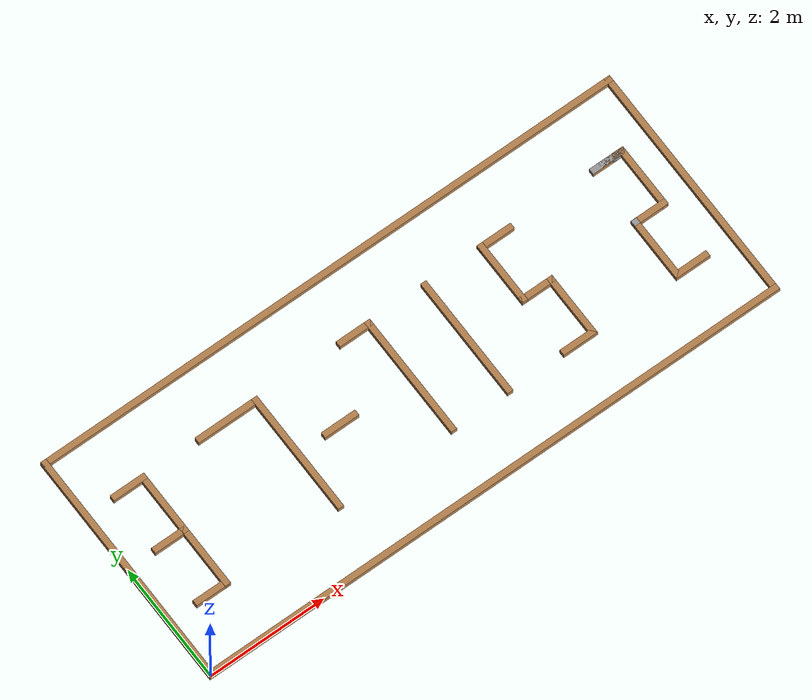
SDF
<?xml version='1.0'?>
<sdf version='1.6'>
  <model name='MapModel'>
    <pose frame=''>-236.645 -59.2901 0 0 -0 0</pose>
    <link name='Wall_0'>
      <collision name='Wall_0_Collision'>
        <geometry>
          <box>
            <size>45.75 0.15 2.5</size>
          </box>
        </geometry>
        <pose frame=''>0 0 1.25 0 -0 0</pose>
      </collision>
      <visual name='Wall_0_Visual'>
        <pose frame=''>0 0 1.25 0 -0 0</pose>
        <geometry>
          <box>
            <size>45.75 0.15 2.5</size>
          </box>
        </geometry>
        <material>
          <script>
            <uri>file://media/materials/scripts/gazebo.material</uri>
            <name>Gazebo/Grey</name>
          </script>
          <ambient>1 1 1 1</ambient>
        </material>
      </visual>
      <pose frame=''>-128.747 -57.3472 0 0 0 -2.87979</pose>
    </link>
    <link name='Wall_1'>
      <collision name='Wall_1_Collision'>
        <geometry>
          <box>
            <size>96 0.15 2.5</size>
          </box>
        </geometry>
        <pose frame=''>0 0 1.25 0 -0 0</pose>
      </collision>
      <visual name='Wall_1_Visual'>
        <pose frame=''>0 0 1.25 0 -0 0</pose>
        <geometry>
          <box>
            <size>96 0.15 2.5</size>
          </box>
        </geometry>
        <material>
          <script>
            <uri>file://media/materials/scripts/gazebo.material</uri>
            <name>Gazebo/Grey</name>
          </script>
          <ambient>1 1 1 1</ambient>
        </material>
      </visual>
      <pose frame=''>-198.695 -63.2483 0 0 -0 3.14159</pose>
    </link>
    <link name='Wall_18'>
      <collision name='Wall_18_Collision'>
        <geometry>
          <box>
            <size>1.1 0.1 0.1</size>
          </box>
        </geometry>
        <pose frame=''>0 0 0.05 0 -0 0</pose>
      </collision>
      <visual name='Wall_18_Visual'>
        <pose frame=''>0 0 0.05 0 -0 0</pose>
        <geometry>
          <box>
            <size>1.1 0.1 0.1</size>
          </box>
        </geometry>
        <material>
          <script>
            <uri>file://media/materials/scripts/gazebo.material</uri>
            <name>Gazebo/Wood</name>
          </script>
          <ambient>1 1 1 1</ambient>
        </material>
      </visual>
      <pose frame=''>239.145 62.2901 0 0 -0 0</pose>
    </link>
    <link name='Wall_19'>
      <collision name='Wall_19_Collision'>
        <geometry>
          <box>
            <size>2.1 0.1 0.1</size>
          </box>
        </geometry>
        <pose frame=''>0 0 0.05 0 -0 0</pose>
      </collision>
      <visual name='Wall_19_Visual'>
        <pose frame=''>0 0 0.05 0 -0 0</pose>
        <geometry>
          <box>
            <size>2.1 0.1 0.1</size>
          </box>
        </geometry>
        <material>
          <script>
            <uri>file://media/materials/scripts/gazebo.material</uri>
            <name>Gazebo/Wood</name>
          </script>
          <ambient>1 1 1 1</ambient>
        </material>
      </visual>
      <pose frame=''>239.645 61.2901 0 0 0 -1.5708</pose>
    </link>
    <link name='Wall_21'>
      <collision name='Wall_21_Collision'>
        <geometry>
          <box>
            <size>0.6 0.1 0.1</size>
          </box>
        </geometry>
        <pose frame=''>0 0 0.05 0 -0 0</pose>
      </collision>
      <visual name='Wall_21_Visual'>
        <pose frame=''>0 0 0.05 0 -0 0</pose>
        <geometry>
          <box>
            <size>0.6 0.1 0.1</size>
          </box>
        </geometry>
        <material>
          <script>
            <uri>file://media/materials/scripts/gazebo.material</uri>
            <name>Gazebo/Wood</name>
          </script>
          <ambient>1 1 1 1</ambient>
        </material>
      </visual>
      <pose frame=''>240.395 61.2851 0 0 -0 0</pose>
    </link>
    <link name='Wall_23'>
      <collision name='Wall_23_Collision'>
        <geometry>
          <box>
            <size>0.6 0.1 0.1</size>
          </box>
        </geometry>
        <pose frame=''>0 0 0.05 0 -0 0</pose>
      </collision>
      <visual name='Wall_23_Visual'>
        <pose frame=''>0 0 0.05 0 -0 0</pose>
        <geometry>
          <box>
            <size>0.6 0.1 0.1</size>
          </box>
        </geometry>
        <material>
          <script>
            <uri>file://media/materials/scripts/gazebo.material</uri>
            <name>Gazebo/Wood</name>
          </script>
          <ambient>1 1 1 1</ambient>
        </material>
      </visual>
      <pose frame=''>241.395 62.2901 0 0 -0 0</pose>
    </link>
    <link name='Wall_24'>
      <collision name='Wall_24_Collision'>
        <geometry>
          <box>
            <size>2.1 0.1 0.1</size>
          </box>
        </geometry>
        <pose frame=''>0 0 0.05 0 -0 0</pose>
      </collision>
      <visual name='Wall_24_Visual'>
        <pose frame=''>0 0 0.05 0 -0 0</pose>
        <geometry>
          <box>
            <size>2.1 0.1 0.1</size>
          </box>
        </geometry>
        <material>
          <script>
            <uri>file://media/materials/scripts/gazebo.material</uri>
            <name>Gazebo/Wood</name>
          </script>
          <ambient>1 1 1 1</ambient>
        </material>
      </visual>
      <pose frame=''>241.645 61.2901 0 0 0 -1.5708</pose>
    </link>
    <link name='Wall_26'>
      <collision name='Wall_26_Collision'>
        <geometry>
          <box>
            <size>2.1 0.1 0.1</size>
          </box>
        </geometry>
        <pose frame=''>0 0 0.05 0 -0 0</pose>
      </collision>
      <visual name='Wall_26_Visual'>
        <pose frame=''>0 0 0.05 0 -0 0</pose>
        <geometry>
          <box>
            <size>2.1 0.1 0.1</size>
          </box>
        </geometry>
        <material>
          <script>
            <uri>file://media/materials/scripts/gazebo.material</uri>
            <name>Gazebo/Wood</name>
          </script>
          <ambient>1 1 1 1</ambient>
        </material>
      </visual>
      <pose frame=''>242.645 61.2901 0 0 0 -1.5708</pose>
    </link>
    <link name='Wall_28'>
      <collision name='Wall_28_Collision'>
        <geometry>
          <box>
            <size>0.6 0.1 0.1</size>
          </box>
        </geometry>
        <pose frame=''>0 0 0.05 0 -0 0</pose>
      </collision>
      <visual name='Wall_28_Visual'>
        <pose frame=''>0 0 0.05 0 -0 0</pose>
        <geometry>
          <box>
            <size>0.6 0.1 0.1</size>
          </box>
        </geometry>
        <material>
          <script>
            <uri>file://media/materials/scripts/gazebo.material</uri>
            <name>Gazebo/Wood</name>
          </script>
          <ambient>1 1 1 1</ambient>
        </material>
      </visual>
      <pose frame=''>243.895 62.2901 0 0 -0 3.14159</pose>
    </link>
    <link name='Wall_29'>
      <collision name='Wall_29_Collision'>
        <geometry>
          <box>
            <size>1.1 0.1 0.1</size>
          </box>
        </geometry>
        <pose frame=''>0 0 0.05 0 -0 0</pose>
      </collision>
      <visual name='Wall_29_Visual'>
        <pose frame=''>0 0 0.05 0 -0 0</pose>
        <geometry>
          <box>
            <size>1.1 0.1 0.1</size>
          </box>
        </geometry>
        <material>
          <script>
            <uri>file://media/materials/scripts/gazebo.material</uri>
            <name>Gazebo/Wood</name>
          </script>
          <ambient>1 1 1 1</ambient>
        </material>
      </visual>
      <pose frame=''>243.645 61.7901 0 0 0 -1.5708</pose>
    </link>
    <link name='Wall_30'>
      <collision name='Wall_30_Collision'>
        <geometry>
          <box>
            <size>0.6 0.1 0.1</size>
          </box>
        </geometry>
        <pose frame=''>0 0 0.05 0 -0 0</pose>
      </collision>
      <visual name='Wall_30_Visual'>
        <pose frame=''>0 0 0.05 0 -0 0</pose>
        <geometry>
          <box>
            <size>0.6 0.1 0.1</size>
          </box>
        </geometry>
        <material>
          <script>
            <uri>file://media/materials/scripts/gazebo.material</uri>
            <name>Gazebo/Wood</name>
          </script>
          <ambient>1 1 1 1</ambient>
        </material>
      </visual>
      <pose frame=''>243.895 61.2901 0 0 -0 0</pose>
    </link>
    <link name='Wall_31'>
      <collision name='Wall_31_Collision'>
        <geometry>
          <box>
            <size>1.1 0.1 0.1</size>
          </box>
        </geometry>
        <pose frame=''>0 0 0.05 0 -0 0</pose>
      </collision>
      <visual name='Wall_31_Visual'>
        <pose frame=''>0 0 0.05 0 -0 0</pose>
        <geometry>
          <box>
            <size>1.1 0.1 0.1</size>
          </box>
        </geometry>
        <material>
          <script>
            <uri>file://media/materials/scripts/gazebo.material</uri>
            <name>Gazebo/Wood</name>
          </script>
          <ambient>1 1 1 1</ambient>
        </material>
      </visual>
      <pose frame=''>244.145 60.7901 0 0 0 -1.5708</pose>
    </link>
    <link name='Wall_32'>
      <collision name='Wall_32_Collision'>
        <geometry>
          <box>
            <size>0.6 0.1 0.1</size>
          </box>
        </geometry>
        <pose frame=''>0 0 0.05 0 -0 0</pose>
      </collision>
      <visual name='Wall_32_Visual'>
        <pose frame=''>0 0 0.05 0 -0 0</pose>
        <geometry>
          <box>
            <size>0.6 0.1 0.1</size>
          </box>
        </geometry>
        <material>
          <script>
            <uri>file://media/materials/scripts/gazebo.material</uri>
            <name>Gazebo/Wood</name>
          </script>
          <ambient>1 1 1 1</ambient>
        </material>
      </visual>
      <pose frame=''>243.895 60.2901 0 0 -0 3.14159</pose>
    </link>
    <link name='Wall_34'>
      <collision name='Wall_34_Collision'>
        <geometry>
          <box>
            <size>0.6 0.1 0.1</size>
          </box>
        </geometry>
        <pose frame=''>0 0 0.05 0 -0 0</pose>
      </collision>
      <visual name='Wall_34_Visual'>
        <pose frame=''>0 0 0.05 0 -0 0</pose>
        <geometry>
          <box>
            <size>0.6 0.1 0.1</size>
          </box>
        </geometry>
        <material>
          <script>
            <uri>file://media/materials/scripts/gazebo.material</uri>
            <name>Gazebo/Grey</name>
          </script>
          <ambient>1 1 1 1</ambient>
        </material>
      </visual>
      <pose frame=''>245.895 62.2901 0 0 -0 3.14159</pose>
    </link>
    <link name='Wall_35'>
      <collision name='Wall_35_Collision'>
        <geometry>
          <box>
            <size>0.6 0.1 0.1</size>
          </box>
        </geometry>
        <pose frame=''>0 0 0.05 0 -0 0</pose>
      </collision>
      <visual name='Wall_35_Visual'>
        <pose frame=''>0 0 0.05 0 -0 0</pose>
        <geometry>
          <box>
            <size>0.6 0.1 0.1</size>
          </box>
        </geometry>
        <material>
          <script>
            <uri>file://media/materials/scripts/gazebo.material</uri>
            <name>Gazebo/Wood</name>
          </script>
          <ambient>1 1 1 1</ambient>
        </material>
      </visual>
      <pose frame=''>245.895 62.2901 0 0 -0 0</pose>
    </link>
    <link name='Wall_36'>
      <collision name='Wall_36_Collision'>
        <geometry>
          <box>
            <size>1.1 0.1 0.1</size>
          </box>
        </geometry>
        <pose frame=''>0 0 0.05 0 -0 0</pose>
      </collision>
      <visual name='Wall_36_Visual'>
        <pose frame=''>0 0 0.05 0 -0 0</pose>
        <geometry>
          <box>
            <size>1.1 0.1 0.1</size>
          </box>
        </geometry>
        <material>
          <script>
            <uri>file://media/materials/scripts/gazebo.material</uri>
            <name>Gazebo/Wood</name>
          </script>
          <ambient>1 1 1 1</ambient>
        </material>
      </visual>
      <pose frame=''>246.145 61.7901 0 0 0 -1.5708</pose>
    </link>
    <link name='Wall_38'>
      <collision name='Wall_38_Collision'>
        <geometry>
          <box>
            <size>0.1 0.1 0.1</size>
          </box>
        </geometry>
        <pose frame=''>0 0 0.05 0 -0 0</pose>
      </collision>
      <visual name='Wall_38_Visual'>
        <pose frame=''>0 0 0.05 0 -0 0</pose>
        <geometry>
          <box>
            <size>0.1 0.1 0.1</size>
          </box>
        </geometry>
        <material>
          <script>
            <uri>file://media/materials/scripts/gazebo.material</uri>
            <name>Gazebo/Grey</name>
          </script>
          <ambient>1 1 1 1</ambient>
        </material>
      </visual>
      <pose frame=''>245.645 61.2901 0 0 -0 0</pose>
    </link>
    <link name='Wall_41'>
      <collision name='Wall_41_Collision'>
        <geometry>
          <box>
            <size>0.6 0.1 0.1</size>
          </box>
        </geometry>
        <pose frame=''>0 0 0.05 0 -0 0</pose>
      </collision>
      <visual name='Wall_41_Visual'>
        <pose frame=''>0 0 0.05 0 -0 0</pose>
        <geometry>
          <box>
            <size>0.6 0.1 0.1</size>
          </box>
        </geometry>
        <material>
          <script>
            <uri>file://media/materials/scripts/gazebo.material</uri>
            <name>Gazebo/Wood</name>
          </script>
          <ambient>1 1 1 1</ambient>
        </material>
      </visual>
      <pose frame=''>237.395 60.2901 0 0 -0 0</pose>
    </link>
    <link name='Wall_42'>
      <collision name='Wall_42_Collision'>
        <geometry>
          <box>
            <size>1.1 0.1 0.1</size>
          </box>
        </geometry>
        <pose frame=''>0 0 0.05 0 -0 0</pose>
      </collision>
      <visual name='Wall_42_Visual'>
        <pose frame=''>0 0 0.05 0 -0 0</pose>
        <geometry>
          <box>
            <size>1.1 0.1 0.1</size>
          </box>
        </geometry>
        <material>
          <script>
            <uri>file://media/materials/scripts/gazebo.material</uri>
            <name>Gazebo/Wood</name>
          </script>
          <ambient>1 1 1 1</ambient>
        </material>
      </visual>
      <pose frame=''>237.645 60.7901 0 0 -0 1.5708</pose>
    </link>
    <link name='Wall_43'>
      <collision name='Wall_43_Collision'>
        <geometry>
          <box>
            <size>0.6 0.1 0.1</size>
          </box>
        </geometry>
        <pose frame=''>0 0 0.05 0 -0 0</pose>
      </collision>
      <visual name='Wall_43_Visual'>
        <pose frame=''>0 0 0.05 0 -0 0</pose>
        <geometry>
          <box>
            <size>0.6 0.1 0.1</size>
          </box>
        </geometry>
        <material>
          <script>
            <uri>file://media/materials/scripts/gazebo.material</uri>
            <name>Gazebo/Wood</name>
          </script>
          <ambient>1 1 1 1</ambient>
        </material>
      </visual>
      <pose frame=''>237.395 61.2901 0 0 -0 3.14159</pose>
    </link>
    <link name='Wall_45'>
      <collision name='Wall_45_Collision'>
        <geometry>
          <box>
            <size>1.1 0.1 0.1</size>
          </box>
        </geometry>
        <pose frame=''>0 0 0.05 0 -0 0</pose>
      </collision>
      <visual name='Wall_45_Visual'>
        <pose frame=''>0 0 0.05 0 -0 0</pose>
        <geometry>
          <box>
            <size>1.1 0.1 0.1</size>
          </box>
        </geometry>
        <material>
          <script>
            <uri>file://media/materials/scripts/gazebo.material</uri>
            <name>Gazebo/Wood</name>
          </script>
          <ambient>1 1 1 1</ambient>
        </material>
      </visual>
      <pose frame=''>237.645 61.7901 0 0 -0 1.5708</pose>
    </link>
    <link name='Wall_46'>
      <collision name='Wall_46_Collision'>
        <geometry>
          <box>
            <size>0.6 0.1 0.1</size>
          </box>
        </geometry>
        <pose frame=''>0 0 0.05 0 -0 0</pose>
      </collision>
      <visual name='Wall_46_Visual'>
        <pose frame=''>0 0 0.05 0 -0 0</pose>
        <geometry>
          <box>
            <size>0.6 0.1 0.1</size>
          </box>
        </geometry>
        <material>
          <script>
            <uri>file://media/materials/scripts/gazebo.material</uri>
            <name>Gazebo/Wood</name>
          </script>
          <ambient>1 1 1 1</ambient>
        </material>
      </visual>
      <pose frame=''>237.395 62.2901 0 0 -0 3.14159</pose>
    </link>
    <link name='Wall_50'>
      <collision name='Wall_50_Collision'>
        <geometry>
          <box>
            <size>0.6 0.1 0.1</size>
          </box>
        </geometry>
        <pose frame=''>0 0 0.05 0 -0 0</pose>
      </collision>
      <visual name='Wall_50_Visual'>
        <pose frame=''>0 0 0.05 0 -0 0</pose>
        <geometry>
          <box>
            <size>0.6 0.1 0.1</size>
          </box>
        </geometry>
        <material>
          <script>
            <uri>file://media/materials/scripts/gazebo.material</uri>
            <name>Gazebo/Wood</name>
          </script>
          <ambient>1 1 1 1</ambient>
        </material>
      </visual>
      <pose frame=''>245.895 61.2901 0 0 -0 3.14159</pose>
    </link>
    <link name='Wall_51'>
      <collision name='Wall_51_Collision'>
        <geometry>
          <box>
            <size>1.1 0.1 0.1</size>
          </box>
        </geometry>
        <pose frame=''>0 0 0.05 0 -0 0</pose>
      </collision>
      <visual name='Wall_51_Visual'>
        <pose frame=''>0 0 0.05 0 -0 0</pose>
        <geometry>
          <box>
            <size>1.1 0.1 0.1</size>
          </box>
        </geometry>
        <material>
          <script>
            <uri>file://media/materials/scripts/gazebo.material</uri>
            <name>Gazebo/Wood</name>
          </script>
          <ambient>1 1 1 1</ambient>
        </material>
      </visual>
      <pose frame=''>245.645 60.7901 0 0 0 -1.5708</pose>
    </link>
    <link name='Wall_52'>
      <collision name='Wall_52_Collision'>
        <geometry>
          <box>
            <size>0.6 0.1 0.1</size>
          </box>
        </geometry>
        <pose frame=''>0 0 0.05 0 -0 0</pose>
      </collision>
      <visual name='Wall_52_Visual'>
        <pose frame=''>0 0 0.05 0 -0 0</pose>
        <geometry>
          <box>
            <size>0.6 0.1 0.1</size>
          </box>
        </geometry>
        <material>
          <script>
            <uri>file://media/materials/scripts/gazebo.material</uri>
            <name>Gazebo/Wood</name>
          </script>
          <ambient>1 1 1 1</ambient>
        </material>
      </visual>
      <pose frame=''>245.895 60.2901 0 0 -0 0</pose>
    </link>
    <link name='Wall_6'>
      <collision name='Wall_6_Collision'>
        <geometry>
          <box>
            <size>10.1 0.1 0.1</size>
          </box>
        </geometry>
        <pose frame=''>0 0 0.05 0 -0 0</pose>
      </collision>
      <visual name='Wall_6_Visual'>
        <pose frame=''>0 0 0.05 0 -0 0</pose>
        <geometry>
          <box>
            <size>10.1 0.1 0.1</size>
          </box>
        </geometry>
        <material>
          <script>
            <uri>file://media/materials/scripts/gazebo.material</uri>
            <name>Gazebo/Wood</name>
          </script>
          <ambient>1 1 1 1</ambient>
        </material>
      </visual>
      <pose frame=''>241.645 63.2901 0 0 -0 0</pose>
    </link>
    <link name='Wall_7'>
      <collision name='Wall_7_Collision'>
        <geometry>
          <box>
            <size>4.1 0.1 0.1</size>
          </box>
        </geometry>
        <pose frame=''>0 0 0.05 0 -0 0</pose>
      </collision>
      <visual name='Wall_7_Visual'>
        <pose frame=''>0 0 0.05 0 -0 0</pose>
        <geometry>
          <box>
            <size>4.1 0.1 0.1</size>
          </box>
        </geometry>
        <material>
          <script>
            <uri>file://media/materials/scripts/gazebo.material</uri>
            <name>Gazebo/Wood</name>
          </script>
          <ambient>1 1 1 1</ambient>
        </material>
      </visual>
      <pose frame=''>246.645 61.2901 0 0 0 -1.5708</pose>
    </link>
    <link name='Wall_8'>
      <collision name='Wall_8_Collision'>
        <geometry>
          <box>
            <size>10.1 0.1 0.1</size>
          </box>
        </geometry>
        <pose frame=''>0 0 0.05 0 -0 0</pose>
      </collision>
      <visual name='Wall_8_Visual'>
        <pose frame=''>0 0 0.05 0 -0 0</pose>
        <geometry>
          <box>
            <size>10.1 0.1 0.1</size>
          </box>
        </geometry>
        <material>
          <script>
            <uri>file://media/materials/scripts/gazebo.material</uri>
            <name>Gazebo/Wood</name>
          </script>
          <ambient>1 1 1 1</ambient>
        </material>
      </visual>
      <pose frame=''>241.645 59.2901 0 0 -0 3.14159</pose>
    </link>
    <link name='Wall_9'>
      <collision name='Wall_9_Collision'>
        <geometry>
          <box>
            <size>4.1 0.1 0.1</size>
          </box>
        </geometry>
        <pose frame=''>0 0 0.05 0 -0 0</pose>
      </collision>
      <visual name='Wall_9_Visual'>
        <pose frame=''>0 0 0.05 0 -0 0</pose>
        <geometry>
          <box>
            <size>4.1 0.1 0.1</size>
          </box>
        </geometry>
        <material>
          <script>
            <uri>file://media/materials/scripts/gazebo.material</uri>
            <name>Gazebo/Wood</name>
          </script>
          <ambient>1 1 1 1</ambient>
        </material>
      </visual>
      <pose frame=''>236.645 61.2901 0 0 -0 1.5708</pose>
    </link>
    <static>1</static>
  </model>
</sdf>
